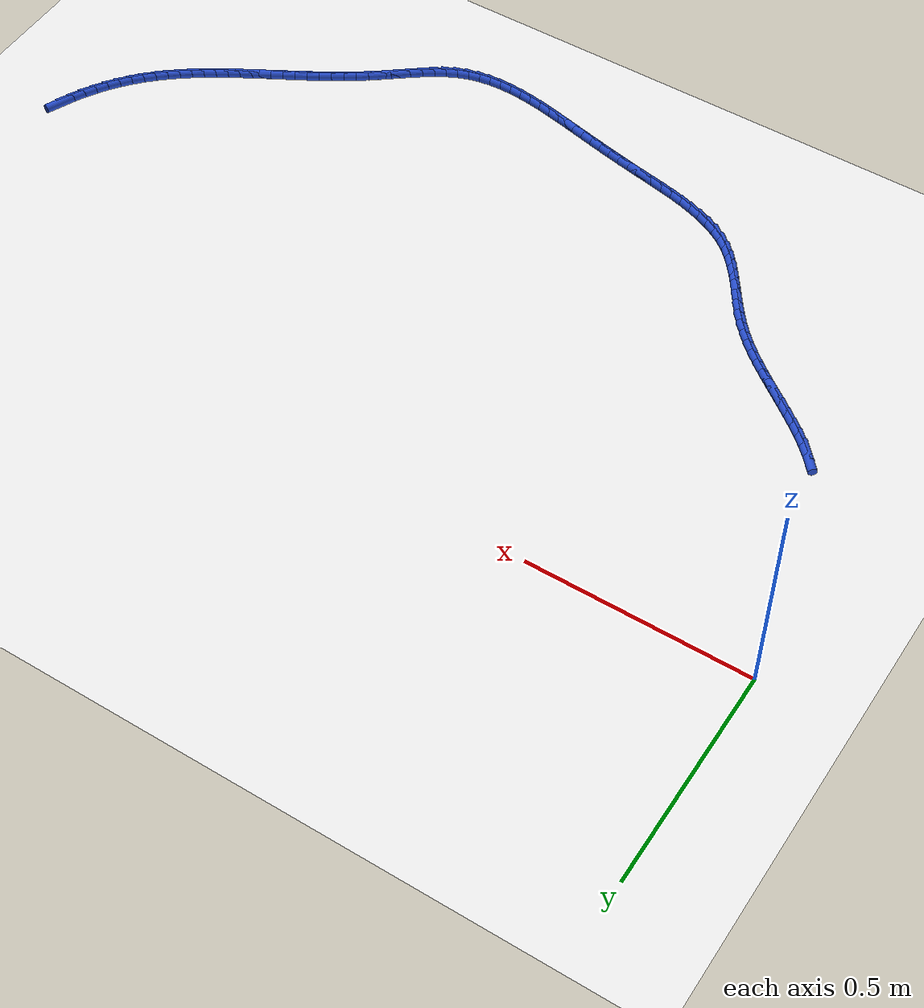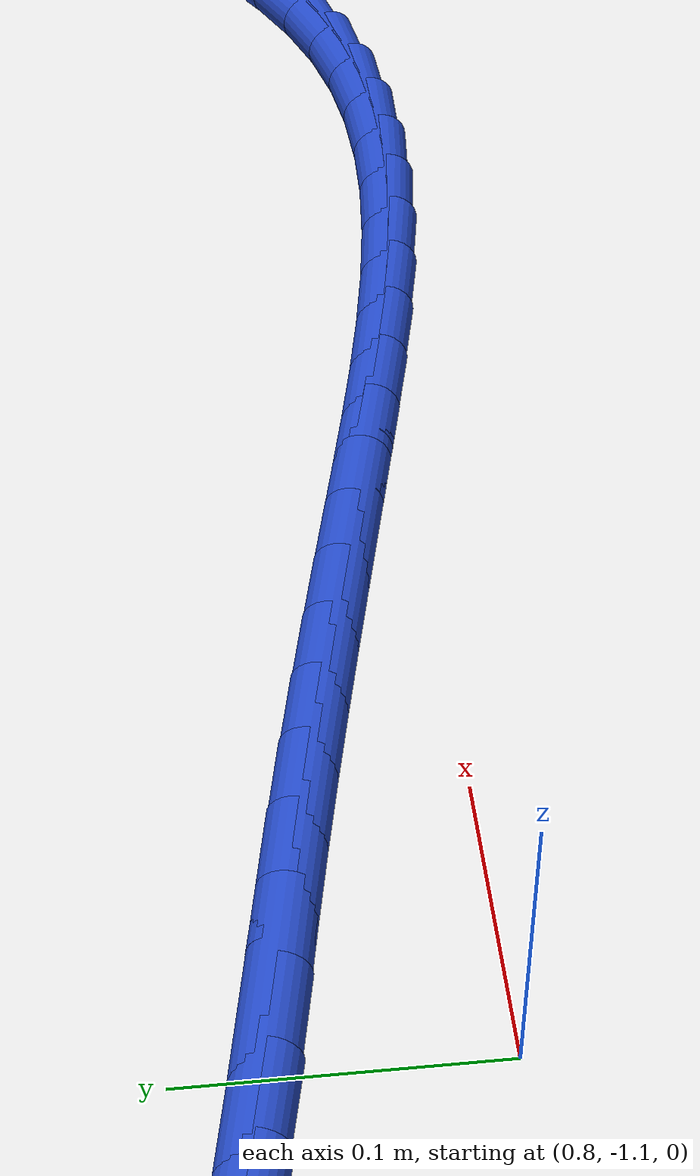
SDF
<sdf version="1.6">
 <world name="default">
  <model name="ground_plane">
   <static>1</static>
   <link name="link">
    <collision name="collision">
     <geometry><plane><normal>0 0 1</normal><size>100 100</size></plane></geometry>
     <surface><friction><ode><mu>100</mu><mu2>50</mu2></ode></friction></surface>
    </collision>
    <visual name="visual">
     <cast_shadows>0</cast_shadows>
     <geometry><plane><normal>0 0 1</normal><size>100 100</size></plane></geometry>
     <material>
      <script><uri>file://media/materials/scripts/gazebo.material</uri><name>Gazebo/WhiteGlow</name></script>
     </material>
    </visual>
   </link>
  </model>
  <model name="line">
   <link name="link_147">
    <pose>2.0394534402244555 -0.5200774827624904 0.01 0 1.57 1.1607014938859093</pose>
    <collision name="collision">
     <geometry><cylinder><radius>0.01</radius><length>0.08</length></cylinder></geometry>
    </collision>
    <visual name="visual">
     <material>
      <script><name>Gazebo/Blue</name><uri>file://media/materials/scripts/gazebo.material</uri></script>
     </material>
     <geometry><cylinder><radius>0.01</radius><length>0.08</length></cylinder></geometry>
    </visual>
   </link>
   <link name="link_148">
    <pose>2.028151447558651 -0.546074377019081 0.01 0 1.57 1.102964004471586</pose>
    <collision name="collision">
     <geometry><cylinder><radius>0.01</radius><length>0.08</length></cylinder></geometry>
    </collision>
    <visual name="visual">
     <material>
      <script><name>Gazebo/Blue</name><uri>file://media/materials/scripts/gazebo.material</uri></script>
     </material>
     <geometry><cylinder><radius>0.01</radius><length>0.08</length></cylinder></geometry>
    </visual>
   </link>
   <link name="link_149">
    <pose>2.0153294047176042 -0.571452405030783 0.01 0 1.57 1.0470421903104383</pose>
    <collision name="collision">
     <geometry><cylinder><radius>0.01</radius><length>0.08</length></cylinder></geometry>
    </collision>
    <visual name="visual">
     <material>
      <script><name>Gazebo/Blue</name><uri>file://media/materials/scripts/gazebo.material</uri></script>
     </material>
     <geometry><cylinder><radius>0.01</radius><length>0.08</length></cylinder></geometry>
    </visual>
   </link>
   <link name="link_150">
    <pose>2.0010843187176457 -0.5961167676055996 0.01 0 1.57 0.9925142822831742</pose>
    <collision name="collision">
     <geometry><cylinder><radius>0.01</radius><length>0.08</length></cylinder></geometry>
    </collision>
    <visual name="visual">
     <material>
      <script><name>Gazebo/Blue</name><uri>file://media/materials/scripts/gazebo.material</uri></script>
     </material>
     <geometry><cylinder><radius>0.01</radius><length>0.08</length></cylinder></geometry>
    </visual>
   </link>
   <link name="link_151">
    <pose>1.9855131965751047 -0.6199726655515341 0.01 0 1.57 0.9389484824659057</pose>
    <collision name="collision">
     <geometry><cylinder><radius>0.01</radius><length>0.08</length></cylinder></geometry>
    </collision>
    <visual name="visual">
     <material>
      <script><name>Gazebo/Blue</name><uri>file://media/materials/scripts/gazebo.material</uri></script>
     </material>
     <geometry><cylinder><radius>0.01</radius><length>0.08</length></cylinder></geometry>
    </visual>
   </link>
   <link name="link_152">
    <pose>1.9687130453063098 -0.6429252996765897 0.01 0 1.57 0.8859038505547642</pose>
    <collision name="collision">
     <geometry><cylinder><radius>0.01</radius><length>0.08</length></cylinder></geometry>
    </collision>
    <visual name="visual">
     <material>
      <script><name>Gazebo/Blue</name><uri>file://media/materials/scripts/gazebo.material</uri></script>
     </material>
     <geometry><cylinder><radius>0.01</radius><length>0.08</length></cylinder></geometry>
    </visual>
   </link>
   <link name="link_153">
    <pose>1.9507808719275892 -0.6648798707887694 0.01 0 1.57 0.8329288174640016</pose>
    <collision name="collision">
     <geometry><cylinder><radius>0.01</radius><length>0.08</length></cylinder></geometry>
    </collision>
    <visual name="visual">
     <material>
      <script><name>Gazebo/Blue</name><uri>file://media/materials/scripts/gazebo.material</uri></script>
     </material>
     <geometry><cylinder><radius>0.01</radius><length>0.08</length></cylinder></geometry>
    </visual>
   </link>
   <link name="link_154">
    <pose>1.931813683455275 -0.6857415796960771 0.01 0 1.57 0.7798950643243298</pose>
    <collision name="collision">
     <geometry><cylinder><radius>0.01</radius><length>0.08</length></cylinder></geometry>
    </collision>
    <visual name="visual">
     <material>
      <script><name>Gazebo/Blue</name><uri>file://media/materials/scripts/gazebo.material</uri></script>
     </material>
     <geometry><cylinder><radius>0.01</radius><length>0.08</length></cylinder></geometry>
    </visual>
   </link>
   <link name="link_155">
    <pose>1.9119086550240318 -0.7054287262663105 0.01 0 1.57 0.7298285627739514</pose>
    <collision name="collision">
     <geometry><cylinder><radius>0.01</radius><length>0.08</length></cylinder></geometry>
    </collision>
    <visual name="visual">
     <material>
      <script><name>Gazebo/Blue</name><uri>file://media/materials/scripts/gazebo.material</uri></script>
     </material>
     <geometry><cylinder><radius>0.01</radius><length>0.08</length></cylinder></geometry>
    </visual>
   </link>
   <link name="link_156">
    <pose>1.891164590951865 -0.7239865493457768 0.01 0 1.57 0.6848283657158385</pose>
    <collision name="collision">
     <geometry><cylinder><radius>0.01</radius><length>0.08</length></cylinder></geometry>
    </collision>
    <visual name="visual">
     <material>
      <script><name>Gazebo/Blue</name><uri>file://media/materials/scripts/gazebo.material</uri></script>
     </material>
     <geometry><cylinder><radius>0.01</radius><length>0.08</length></cylinder></geometry>
    </visual>
   </link>
   <link name="link_157">
    <pose>1.8696812103575895 -0.7415315651364027 0.01 0 1.57 0.6451563877351554</pose>
    <collision name="collision">
     <geometry><cylinder><radius>0.01</radius><length>0.08</length></cylinder></geometry>
    </collision>
    <visual name="visual">
     <material>
      <script><name>Gazebo/Blue</name><uri>file://media/materials/scripts/gazebo.material</uri></script>
     </material>
     <geometry><cylinder><radius>0.01</radius><length>0.08</length></cylinder></geometry>
    </visual>
   </link>
   <link name="link_158">
    <pose>1.847558242507055 -0.7581810804535143 0.01 0 1.57 0.6109434050752018</pose>
    <collision name="collision">
     <geometry><cylinder><radius>0.01</radius><length>0.08</length></cylinder></geometry>
    </collision>
    <visual name="visual">
     <material>
      <script><name>Gazebo/Blue</name><uri>file://media/materials/scripts/gazebo.material</uri></script>
     </material>
     <geometry><cylinder><radius>0.01</radius><length>0.08</length></cylinder></geometry>
    </visual>
   </link>
   <link name="link_159">
    <pose>1.8248954166661098 -0.7740524021124374 0.01 0 1.57 0.582241048737976</pose>
    <collision name="collision">
     <geometry><cylinder><radius>0.01</radius><length>0.08</length></cylinder></geometry>
    </collision>
    <visual name="visual">
     <material>
      <script><name>Gazebo/Blue</name><uri>file://media/materials/scripts/gazebo.material</uri></script>
     </material>
     <geometry><cylinder><radius>0.01</radius><length>0.08</length></cylinder></geometry>
    </visual>
   </link>
   <link name="link_160">
    <pose>1.8017924621006032 -0.7892628369284977 0.01 0 1.57 0.5590518900078861</pose>
    <collision name="collision">
     <geometry><cylinder><radius>0.01</radius><length>0.08</length></cylinder></geometry>
    </collision>
    <visual name="visual">
     <material>
      <script><name>Gazebo/Blue</name><uri>file://media/materials/scripts/gazebo.material</uri></script>
     </material>
     <geometry><cylinder><radius>0.01</radius><length>0.08</length></cylinder></geometry>
    </visual>
   </link>
   <link name="link_161">
    <pose>1.778349108076385 -0.8039296917170216 0.01 0 1.57 0.5413555399862903</pose>
    <collision name="collision">
     <geometry><cylinder><radius>0.01</radius><length>0.08</length></cylinder></geometry>
    </collision>
    <visual name="visual">
     <material>
      <script><name>Gazebo/Blue</name><uri>file://media/materials/scripts/gazebo.material</uri></script>
     </material>
     <geometry><cylinder><radius>0.01</radius><length>0.08</length></cylinder></geometry>
    </visual>
   </link>
   <link name="link_162">
    <pose>1.754665083859303 -0.8181702732933342 0.01 0 1.57 0.5291297534630568</pose>
    <collision name="collision">
     <geometry><cylinder><radius>0.01</radius><length>0.08</length></cylinder></geometry>
    </collision>
    <visual name="visual">
     <material>
      <script><name>Gazebo/Blue</name><uri>file://media/materials/scripts/gazebo.material</uri></script>
     </material>
     <geometry><cylinder><radius>0.01</radius><length>0.08</length></cylinder></geometry>
    </visual>
   </link>
   <link name="link_163">
    <pose>1.7308401187152076 -0.8321018884727626 0.01 0 1.57 0.5220765039864893</pose>
    <collision name="collision">
     <geometry><cylinder><radius>0.01</radius><length>0.08</length></cylinder></geometry>
    </collision>
    <visual name="visual">
     <material>
      <script><name>Gazebo/Blue</name><uri>file://media/materials/scripts/gazebo.material</uri></script>
     </material>
     <geometry><cylinder><radius>0.01</radius><length>0.08</length></cylinder></geometry>
    </visual>
   </link>
   <link name="link_164">
    <pose>1.7069632140130602 -0.8458388055028 0.01 0 1.57 0.519037538598423</pose>
    <collision name="collision">
     <geometry><cylinder><radius>0.01</radius><length>0.08</length></cylinder></geometry>
    </collision>
    <visual name="visual">
     <material>
      <script><name>Gazebo/Blue</name><uri>file://media/materials/scripts/gazebo.material</uri></script>
     </material>
     <geometry><cylinder><radius>0.01</radius><length>0.08</length></cylinder></geometry>
    </visual>
   </link>
   <link name="link_165">
    <pose>1.6830798929299817 -0.8594829778747042 0.01 0 1.57 0.5197369578744229</pose>
    <collision name="collision">
     <geometry><cylinder><radius>0.01</radius><length>0.08</length></cylinder></geometry>
    </collision>
    <visual name="visual">
     <material>
      <script><name>Gazebo/Blue</name><uri>file://media/materials/scripts/gazebo.material</uri></script>
     </material>
     <geometry><cylinder><radius>0.01</radius><length>0.08</length></cylinder></geometry>
    </visual>
   </link>
   <link name="link_166">
    <pose>1.6592246655787115 -0.8731332397411036 0.01 0 1.57 0.524181992881121</pose>
    <collision name="collision">
     <geometry><cylinder><radius>0.01</radius><length>0.08</length></cylinder></geometry>
    </collision>
    <visual name="visual">
     <material>
      <script><name>Gazebo/Blue</name><uri>file://media/materials/scripts/gazebo.material</uri></script>
     </material>
     <geometry><cylinder><radius>0.01</radius><length>0.08</length></cylinder></geometry>
    </visual>
   </link>
   <link name="link_167">
    <pose>1.6354320420710828 -0.8868884252543711 0.01 0 1.57 0.5323636918302034</pose>
    <collision name="collision">
     <geometry><cylinder><radius>0.01</radius><length>0.08</length></cylinder></geometry>
    </collision>
    <visual name="visual">
     <material>
      <script><name>Gazebo/Blue</name><uri>file://media/materials/scripts/gazebo.material</uri></script>
     </material>
     <geometry><cylinder><radius>0.01</radius><length>0.08</length></cylinder></geometry>
    </visual>
   </link>
   <link name="link_168">
    <pose>1.6117365325189263 -0.9008473685668779 0.01 0 1.57 0.5442551252715483</pose>
    <collision name="collision">
     <geometry><cylinder><radius>0.01</radius><length>0.08</length></cylinder></geometry>
    </collision>
    <visual name="visual">
     <material>
      <script><name>Gazebo/Blue</name><uri>file://media/materials/scripts/gazebo.material</uri></script>
     </material>
     <geometry><cylinder><radius>0.01</radius><length>0.08</length></cylinder></geometry>
    </visual>
   </link>
   <link name="link_169">
    <pose>1.588172647034073 -0.9151089038309959 0.01 0 1.57 0.559808290816162</pose>
    <collision name="collision">
     <geometry><cylinder><radius>0.01</radius><length>0.08</length></cylinder></geometry>
    </collision>
    <visual name="visual">
     <material>
      <script><name>Gazebo/Blue</name><uri>file://media/materials/scripts/gazebo.material</uri></script>
     </material>
     <geometry><cylinder><radius>0.01</radius><length>0.08</length></cylinder></geometry>
    </visual>
   </link>
   <link name="link_170">
    <pose>1.5647748957283558 -0.9297718651990975 0.01 0 1.57 0.5789499145410457</pose>
    <collision name="collision">
     <geometry><cylinder><radius>0.01</radius><length>0.08</length></cylinder></geometry>
    </collision>
    <visual name="visual">
     <material>
      <script><name>Gazebo/Blue</name><uri>file://media/materials/scripts/gazebo.material</uri></script>
     </material>
     <geometry><cylinder><radius>0.01</radius><length>0.08</length></cylinder></geometry>
    </visual>
   </link>
   <link name="link_171">
    <pose>1.541577788713605 -0.9449350868235543 0.01 0 1.57 0.6015764757833516</pose>
    <collision name="collision">
     <geometry><cylinder><radius>0.01</radius><length>0.08</length></cylinder></geometry>
    </collision>
    <visual name="visual">
     <material>
      <script><name>Gazebo/Blue</name><uri>file://media/materials/scripts/gazebo.material</uri></script>
     </material>
     <geometry><cylinder><radius>0.01</radius><length>0.08</length></cylinder></geometry>
    </visual>
   </link>
   <link name="link_172">
    <pose>1.5186158361016528 -0.9606974028567381 0.01 0 1.57 0.6275489284822567</pose>
    <collision name="collision">
     <geometry><cylinder><radius>0.01</radius><length>0.08</length></cylinder></geometry>
    </collision>
    <visual name="visual">
     <material>
      <script><name>Gazebo/Blue</name><uri>file://media/materials/scripts/gazebo.material</uri></script>
     </material>
     <geometry><cylinder><radius>0.01</radius><length>0.08</length></cylinder></geometry>
    </visual>
   </link>
   <link name="link_173">
    <pose>1.4959235480043307 -0.9771576474510211 0.01 0 1.57 0.6554982507071997</pose>
    <collision name="collision">
     <geometry><cylinder><radius>0.01</radius><length>0.08</length></cylinder></geometry>
    </collision>
    <visual name="visual">
     <material>
      <script><name>Gazebo/Blue</name><uri>file://media/materials/scripts/gazebo.material</uri></script>
     </material>
     <geometry><cylinder><radius>0.01</radius><length>0.08</length></cylinder></geometry>
    </visual>
   </link>
   <link name="link_174">
    <pose>1.4735238959219301 -0.9943811129166319 0.01 0 1.57 0.6723886418195917</pose>
    <collision name="collision">
     <geometry><cylinder><radius>0.01</radius><length>0.08</length></cylinder></geometry>
    </collision>
    <visual name="visual">
     <material>
      <script><name>Gazebo/Blue</name><uri>file://media/materials/scripts/gazebo.material</uri></script>
     </material>
     <geometry><cylinder><radius>0.01</radius><length>0.08</length></cylinder></geometry>
    </visual>
   </link>
   <link name="link_175">
    <pose>1.4513129895394947 -1.0120643141796015 0.01 0 1.57 0.6705403723813222</pose>
    <collision name="collision">
     <geometry><cylinder><radius>0.01</radius><length>0.08</length></cylinder></geometry>
    </collision>
    <visual name="visual">
     <material>
      <script><name>Gazebo/Blue</name><uri>file://media/materials/scripts/gazebo.material</uri></script>
     </material>
     <geometry><cylinder><radius>0.01</radius><length>0.08</length></cylinder></geometry>
    </visual>
   </link>
   <link name="link_176">
    <pose>1.429108419055501 -1.0296755161538667 0.01 0 1.57 0.6496976289407056</pose>
    <collision name="collision">
     <geometry><cylinder><radius>0.01</radius><length>0.08</length></cylinder></geometry>
    </collision>
    <visual name="visual">
     <material>
      <script><name>Gazebo/Blue</name><uri>file://media/materials/scripts/gazebo.material</uri></script>
     </material>
     <geometry><cylinder><radius>0.01</radius><length>0.08</length></cylinder></geometry>
    </visual>
   </link>
   <link name="link_177">
    <pose>1.4067266076742866 -1.046679591392594 0.01 0 1.57 0.6090117469464895</pose>
    <collision name="collision">
     <geometry><cylinder><radius>0.01</radius><length>0.08</length></cylinder></geometry>
    </collision>
    <visual name="visual">
     <material>
      <script><name>Gazebo/Blue</name><uri>file://media/materials/scripts/gazebo.material</uri></script>
     </material>
     <geometry><cylinder><radius>0.01</radius><length>0.08</length></cylinder></geometry>
    </visual>
   </link>
   <link name="link_178">
    <pose>1.3839839786001917 -1.0625414124489478 0.01 0 1.57 0.5470936378254092</pose>
    <collision name="collision">
     <geometry><cylinder><radius>0.01</radius><length>0.08</length></cylinder></geometry>
    </collision>
    <visual name="visual">
     <material>
      <script><name>Gazebo/Blue</name><uri>file://media/materials/scripts/gazebo.material</uri></script>
     </material>
     <geometry><cylinder><radius>0.01</radius><length>0.08</length></cylinder></geometry>
    </visual>
   </link>
   <link name="link_179">
    <pose>1.3606969550375538 -1.0767258518760934 0.01 0 1.57 0.46246207841684284</pose>
    <collision name="collision">
     <geometry><cylinder><radius>0.01</radius><length>0.08</length></cylinder></geometry>
    </collision>
    <visual name="visual">
     <material>
      <script><name>Gazebo/Blue</name><uri>file://media/materials/scripts/gazebo.material</uri></script>
     </material>
     <geometry><cylinder><radius>0.01</radius><length>0.08</length></cylinder></geometry>
    </visual>
   </link>
   <link name="link_180">
    <pose>1.3366819601907127 -1.0886977822271962 0.01 0 1.57 0.35498244303026244</pose>
    <collision name="collision">
     <geometry><cylinder><radius>0.01</radius><length>0.08</length></cylinder></geometry>
    </collision>
    <visual name="visual">
     <material>
      <script><name>Gazebo/Blue</name><uri>file://media/materials/scripts/gazebo.material</uri></script>
     </material>
     <geometry><cylinder><radius>0.01</radius><length>0.08</length></cylinder></geometry>
    </visual>
   </link>
   <link name="link_181">
    <pose>1.311760809189643 -1.0979356831296947 0.01 0 1.57 0.24119229416348173</pose>
    <collision name="collision">
     <geometry><cylinder><radius>0.01</radius><length>0.08</length></cylinder></geometry>
    </collision>
    <visual name="visual">
     <material>
      <script><name>Gazebo/Blue</name><uri>file://media/materials/scripts/gazebo.material</uri></script>
     </material>
     <geometry><cylinder><radius>0.01</radius><length>0.08</length></cylinder></geometry>
    </visual>
   </link>
   <link name="link_182">
    <pose>1.2859049786347023 -1.1042957201957333 0.01 0 1.57 0.13999442233161233</pose>
    <collision name="collision">
     <geometry><cylinder><radius>0.01</radius><length>0.08</length></cylinder></geometry>
    </collision>
    <visual name="visual">
     <material>
      <script><name>Gazebo/Blue</name><uri>file://media/materials/scripts/gazebo.material</uri></script>
     </material>
     <geometry><cylinder><radius>0.01</radius><length>0.08</length></cylinder></geometry>
    </visual>
   </link>
   <link name="link_183">
    <pose>1.259251415050391 -1.1080516392675508 0.01 0 1.57 0.052948682502865815</pose>
    <collision name="collision">
     <geometry><cylinder><radius>0.01</radius><length>0.08</length></cylinder></geometry>
    </collision>
    <visual name="visual">
     <material>
      <script><name>Gazebo/Blue</name><uri>file://media/materials/scripts/gazebo.material</uri></script>
     </material>
     <geometry><cylinder><radius>0.01</radius><length>0.08</length></cylinder></geometry>
    </visual>
   </link>
   <link name="link_184">
    <pose>1.2319456285743622 -1.1094987973385952 0.01 0 1.57 -0.020356592686012392</pose>
    <collision name="collision">
     <geometry><cylinder><radius>0.01</radius><length>0.08</length></cylinder></geometry>
    </collision>
    <visual name="visual">
     <material>
      <script><name>Gazebo/Blue</name><uri>file://media/materials/scripts/gazebo.material</uri></script>
     </material>
     <geometry><cylinder><radius>0.01</radius><length>0.08</length></cylinder></geometry>
    </visual>
   </link>
   <link name="link_185">
    <pose>1.2041331293442687 -1.1089325514023127 0.01 0 1.57 -0.080901939213322</pose>
    <collision name="collision">
     <geometry><cylinder><radius>0.01</radius><length>0.08</length></cylinder></geometry>
    </collision>
    <visual name="visual">
     <material>
      <script><name>Gazebo/Blue</name><uri>file://media/materials/scripts/gazebo.material</uri></script>
     </material>
     <geometry><cylinder><radius>0.01</radius><length>0.08</length></cylinder></geometry>
    </visual>
   </link>
   <link name="link_186">
    <pose>1.1759594274977645 -1.1066482584521506 0.01 0 1.57 -0.12984171581247755</pose>
    <collision name="collision">
     <geometry><cylinder><radius>0.01</radius><length>0.08</length></cylinder></geometry>
    </collision>
    <visual name="visual">
     <material>
      <script><name>Gazebo/Blue</name><uri>file://media/materials/scripts/gazebo.material</uri></script>
     </material>
     <geometry><cylinder><radius>0.01</radius><length>0.08</length></cylinder></geometry>
    </visual>
   </link>
   <link name="link_187">
    <pose>1.147570033172503 -1.1029412754815568 0.01 0 1.57 -0.16825997094299877</pose>
    <collision name="collision">
     <geometry><cylinder><radius>0.01</radius><length>0.08</length></cylinder></geometry>
    </collision>
    <visual name="visual">
     <material>
      <script><name>Gazebo/Blue</name><uri>file://media/materials/scripts/gazebo.material</uri></script>
     </material>
     <geometry><cylinder><radius>0.01</radius><length>0.08</length></cylinder></geometry>
    </visual>
   </link>
   <link name="link_188">
    <pose>1.119110456506137 -1.0981069594839776 0.01 0 1.57 -0.19703788254680052</pose>
    <collision name="collision">
     <geometry><cylinder><radius>0.01</radius><length>0.08</length></cylinder></geometry>
    </collision>
    <visual name="visual">
     <material>
      <script><name>Gazebo/Blue</name><uri>file://media/materials/scripts/gazebo.material</uri></script>
     </material>
     <geometry><cylinder><radius>0.01</radius><length>0.08</length></cylinder></geometry>
    </visual>
   </link>
   <link name="link_189">
    <pose>1.09072620763632 -1.0924406674528606 0.01 0 1.57 -0.21678603557533555</pose>
    <collision name="collision">
     <geometry><cylinder><radius>0.01</radius><length>0.08</length></cylinder></geometry>
    </collision>
    <visual name="visual">
     <material>
      <script><name>Gazebo/Blue</name><uri>file://media/materials/scripts/gazebo.material</uri></script>
     </material>
     <geometry><cylinder><radius>0.01</radius><length>0.08</length></cylinder></geometry>
    </visual>
   </link>
   <link name="link_190">
    <pose>1.0625627967007052 -1.086237756381652 0.01 0 1.57 -0.227805066888016</pose>
    <collision name="collision">
     <geometry><cylinder><radius>0.01</radius><length>0.08</length></cylinder></geometry>
    </collision>
    <visual name="visual">
     <material>
      <script><name>Gazebo/Blue</name><uri>file://media/materials/scripts/gazebo.material</uri></script>
     </material>
     <geometry><cylinder><radius>0.01</radius><length>0.08</length></cylinder></geometry>
    </visual>
   </link>
   <link name="link_191">
    <pose>1.0347657338369465 -1.0797935832638004 0.01 0 1.57 -0.2310871649107776</pose>
    <collision name="collision">
     <geometry><cylinder><radius>0.01</radius><length>0.08</length></cylinder></geometry>
    </collision>
    <visual name="visual">
     <material>
      <script><name>Gazebo/Blue</name><uri>file://media/materials/scripts/gazebo.material</uri></script>
     </material>
     <geometry><cylinder><radius>0.01</radius><length>0.08</length></cylinder></geometry>
    </visual>
   </link>
   <link name="link_192">
    <pose>1.007438056918966 -1.073363642644059 0.01 0 1.57 -0.2311968925453582</pose>
    <collision name="collision">
     <geometry><cylinder><radius>0.01</radius><length>0.08</length></cylinder></geometry>
    </collision>
    <visual name="visual">
     <material>
      <script><name>Gazebo/Blue</name><uri>file://media/materials/scripts/gazebo.material</uri></script>
     </material>
     <geometry><cylinder><radius>0.01</radius><length>0.08</length></cylinder></geometry>
    </visual>
   </link>
   <link name="link_193">
    <pose>0.9804863445492367 -1.0670190417296463 0.01 0 1.57 -0.22942280729182085</pose>
    <collision name="collision">
     <geometry><cylinder><radius>0.01</radius><length>0.08</length></cylinder></geometry>
    </collision>
    <visual name="visual">
     <material>
      <script><name>Gazebo/Blue</name><uri>file://media/materials/scripts/gazebo.material</uri></script>
     </material>
     <geometry><cylinder><radius>0.01</radius><length>0.08</length></cylinder></geometry>
    </visual>
   </link>
   <link name="link_194">
    <pose>0.9537604108312575 -1.060777611266176 0.01 0 1.57 -0.2257424493339475</pose>
    <collision name="collision">
     <geometry><cylinder><radius>0.01</radius><length>0.08</length></cylinder></geometry>
    </collision>
    <visual name="visual">
     <material>
      <script><name>Gazebo/Blue</name><uri>file://media/materials/scripts/gazebo.material</uri></script>
     </material>
     <geometry><cylinder><radius>0.01</radius><length>0.08</length></cylinder></geometry>
    </visual>
   </link>
   <link name="link_195">
    <pose>0.9271100642907885 -1.0546571767642607 0.01 0 1.57 -0.22019224846852214</pose>
    <collision name="collision">
     <geometry><cylinder><radius>0.01</radius><length>0.08</length></cylinder></geometry>
    </collision>
    <visual name="visual">
     <material>
      <script><name>Gazebo/Blue</name><uri>file://media/materials/scripts/gazebo.material</uri></script>
     </material>
     <geometry><cylinder><radius>0.01</radius><length>0.08</length></cylinder></geometry>
    </visual>
   </link>
   <link name="link_196">
    <pose>0.9003851134535875 -1.0486755637345113 0.01 0 1.57 -0.21286723119529138</pose>
    <collision name="collision">
     <geometry><cylinder><radius>0.01</radius><length>0.08</length></cylinder></geometry>
    </collision>
    <visual name="visual">
     <material>
      <script><name>Gazebo/Blue</name><uri>file://media/materials/scripts/gazebo.material</uri></script>
     </material>
     <geometry><cylinder><radius>0.01</radius><length>0.08</length></cylinder></geometry>
    </visual>
   </link>
   <link name="link_197">
    <pose>0.873435366845414 -1.04285059768754 0.01 0 1.57 -0.20391622572733256</pose>
    <collision name="collision">
     <geometry><cylinder><radius>0.01</radius><length>0.08</length></cylinder></geometry>
    </collision>
    <visual name="visual">
     <material>
      <script><name>Gazebo/Blue</name><uri>file://media/materials/scripts/gazebo.material</uri></script>
     </material>
     <geometry><cylinder><radius>0.01</radius><length>0.08</length></cylinder></geometry>
    </visual>
   </link>
   <link name="link_198">
    <pose>0.8461106333311484 -1.0372001039010736 0.01 0 1.57 -0.19555950271715009</pose>
    <collision name="collision">
     <geometry><cylinder><radius>0.01</radius><length>0.08</length></cylinder></geometry>
    </collision>
    <visual name="visual">
     <material>
      <script><name>Gazebo/Blue</name><uri>file://media/materials/scripts/gazebo.material</uri></script>
     </material>
     <geometry><cylinder><radius>0.01</radius><length>0.08</length></cylinder></geometry>
    </visual>
   </link>
   <link name="link_199">
    <pose>0.8183269795819313 -1.0316964066069982 0.01 0 1.57 -0.19541677949048863</pose>
    <collision name="collision">
     <geometry><cylinder><radius>0.01</radius><length>0.08</length></cylinder></geometry>
    </collision>
    <visual name="visual">
     <material>
      <script><name>Gazebo/Blue</name><uri>file://media/materials/scripts/gazebo.material</uri></script>
     </material>
     <geometry><cylinder><radius>0.01</radius><length>0.08</length></cylinder></geometry>
    </visual>
   </link>
   <link name="link_200">
    <pose>0.7902519262725237 -1.0261391497027368 0.01 0 1.57 -0.2050472013083898</pose>
    <collision name="collision">
     <geometry><cylinder><radius>0.01</radius><length>0.08</length></cylinder></geometry>
    </collision>
    <visual name="visual">
     <material>
      <script><name>Gazebo/Blue</name><uri>file://media/materials/scripts/gazebo.material</uri></script>
     </material>
     <geometry><cylinder><radius>0.01</radius><length>0.08</length></cylinder></geometry>
    </visual>
   </link>
   <link name="link_201">
    <pose>0.7621126354598751 -1.020287019719054 0.01 0 1.57 -0.22449777829286993</pose>
    <collision name="collision">
     <geometry><cylinder><radius>0.01</radius><length>0.08</length></cylinder></geometry>
    </collision>
    <visual name="visual">
     <material>
      <script><name>Gazebo/Blue</name><uri>file://media/materials/scripts/gazebo.material</uri></script>
     </material>
     <geometry><cylinder><radius>0.01</radius><length>0.08</length></cylinder></geometry>
    </visual>
   </link>
   <link name="link_202">
    <pose>0.734136269200935 -1.0138987031867126 0.01 0 1.57 -0.2541433965901949</pose>
    <collision name="collision">
     <geometry><cylinder><radius>0.01</radius><length>0.08</length></cylinder></geometry>
    </collision>
    <visual name="visual">
     <material>
      <script><name>Gazebo/Blue</name><uri>file://media/materials/scripts/gazebo.material</uri></script>
     </material>
     <geometry><cylinder><radius>0.01</radius><length>0.08</length></cylinder></geometry>
    </visual>
   </link>
   <link name="link_203">
    <pose>0.7065499895526535 -1.0067328866364778 0.01 0 1.57 -0.2946487154816712</pose>
    <collision name="collision">
     <geometry><cylinder><radius>0.01</radius><length>0.08</length></cylinder></geometry>
    </collision>
    <visual name="visual">
     <material>
      <script><name>Gazebo/Blue</name><uri>file://media/materials/scripts/gazebo.material</uri></script>
     </material>
     <geometry><cylinder><radius>0.01</radius><length>0.08</length></cylinder></geometry>
    </visual>
   </link>
   <link name="link_204">
    <pose>0.6795809585719799 -0.9985482565991125 0.01 0 1.57 -0.34690677578327367</pose>
    <collision name="collision">
     <geometry><cylinder><radius>0.01</radius><length>0.08</length></cylinder></geometry>
    </collision>
    <visual name="visual">
     <material>
      <script><name>Gazebo/Blue</name><uri>file://media/materials/scripts/gazebo.material</uri></script>
     </material>
     <geometry><cylinder><radius>0.01</radius><length>0.08</length></cylinder></geometry>
    </visual>
   </link>
   <link name="link_205">
    <pose>0.653456338315864 -0.989103499605381 0.01 0 1.57 -0.41192418580479384</pose>
    <collision name="collision">
     <geometry><cylinder><radius>0.01</radius><length>0.08</length></cylinder></geometry>
    </collision>
    <visual name="visual">
     <material>
      <script><name>Gazebo/Blue</name><uri>file://media/materials/scripts/gazebo.material</uri></script>
     </material>
     <geometry><cylinder><radius>0.01</radius><length>0.08</length></cylinder></geometry>
    </visual>
   </link>
   <link name="link_206">
    <pose>0.6284032908412552 -0.9781573021860471 0.01 0 1.57 -0.49061209112960336</pose>
    <collision name="collision">
     <geometry><cylinder><radius>0.01</radius><length>0.08</length></cylinder></geometry>
    </collision>
    <visual name="visual">
     <material>
      <script><name>Gazebo/Blue</name><uri>file://media/materials/scripts/gazebo.material</uri></script>
     </material>
     <geometry><cylinder><radius>0.01</radius><length>0.08</length></cylinder></geometry>
    </visual>
   </link>
   <link name="link_207">
    <pose>0.6046489782051035 -0.9654683508718751 0.01 0 1.57 -0.5834439598080575</pose>
    <collision name="collision">
     <geometry><cylinder><radius>0.01</radius><length>0.08</length></cylinder></geometry>
    </collision>
    <visual name="visual">
     <material>
      <script><name>Gazebo/Blue</name><uri>file://media/materials/scripts/gazebo.material</uri></script>
     </material>
     <geometry><cylinder><radius>0.01</radius><length>0.08</length></cylinder></geometry>
    </visual>
   </link>
   <link name="link_208">
    <pose>0.5824205624643586 -0.9507953321936287 0.01 0 1.57 -0.6892367860913915</pose>
    <collision name="collision">
     <geometry><cylinder><radius>0.01</radius><length>0.08</length></cylinder></geometry>
    </collision>
    <visual name="visual">
     <material>
      <script><name>Gazebo/Blue</name><uri>file://media/materials/scripts/gazebo.material</uri></script>
     </material>
     <geometry><cylinder><radius>0.01</radius><length>0.08</length></cylinder></geometry>
    </visual>
   </link>
   <link name="link_209">
    <pose>0.5619319736198143 -0.9339116324327507 0.01 0 1.57 -0.7900097394956082</pose>
    <collision name="collision">
     <geometry><cylinder><radius>0.01</radius><length>0.08</length></cylinder></geometry>
    </collision>
    <visual name="visual">
     <material>
      <script><name>Gazebo/Blue</name><uri>file://media/materials/scripts/gazebo.material</uri></script>
     </material>
     <geometry><cylinder><radius>0.01</radius><length>0.08</length></cylinder></geometry>
    </visual>
   </link>
   <link name="link_210">
    <pose>0.5431073463695367 -0.9149125771556849 0.01 0 1.57 -0.8685924137953628</pose>
    <collision name="collision">
     <geometry><cylinder><radius>0.01</radius><length>0.08</length></cylinder></geometry>
    </collision>
    <visual name="visual">
     <material>
      <script><name>Gazebo/Blue</name><uri>file://media/materials/scripts/gazebo.material</uri></script>
     </material>
     <geometry><cylinder><radius>0.01</radius><length>0.08</length></cylinder></geometry>
    </visual>
   </link>
   <link name="link_211">
    <pose>0.5255888759091741 -0.8942067040512548 0.01 0 1.57 -0.9247281069723902</pose>
    <collision name="collision">
     <geometry><cylinder><radius>0.01</radius><length>0.08</length></cylinder></geometry>
    </collision>
    <visual name="visual">
     <material>
      <script><name>Gazebo/Blue</name><uri>file://media/materials/scripts/gazebo.material</uri></script>
     </material>
     <geometry><cylinder><radius>0.01</radius><length>0.08</length></cylinder></geometry>
    </visual>
   </link>
   <link name="link_212">
    <pose>0.5090070969102863 -0.8722155047131682 0.01 0 1.57 -0.9595998214967174</pose>
    <collision name="collision">
     <geometry><cylinder><radius>0.01</radius><length>0.08</length></cylinder></geometry>
    </collision>
    <visual name="visual">
     <material>
      <script><name>Gazebo/Blue</name><uri>file://media/materials/scripts/gazebo.material</uri></script>
     </material>
     <geometry><cylinder><radius>0.01</radius><length>0.08</length></cylinder></geometry>
    </visual>
   </link>
   <link name="link_213">
    <pose>0.492992544044433 -0.8493604707351337 0.01 0 1.57 -0.9743662831888057</pose>
    <collision name="collision">
     <geometry><cylinder><radius>0.01</radius><length>0.08</length></cylinder></geometry>
    </collision>
    <visual name="visual">
     <material>
      <script><name>Gazebo/Blue</name><uri>file://media/materials/scripts/gazebo.material</uri></script>
     </material>
     <geometry><cylinder><radius>0.01</radius><length>0.08</length></cylinder></geometry>
    </visual>
   </link>
   <link name="link_214">
    <pose>0.47717575198317363 -0.8260630937108593 0.01 0 1.57 -0.9697559952803553</pose>
    <collision name="collision">
     <geometry><cylinder><radius>0.01</radius><length>0.08</length></cylinder></geometry>
    </collision>
    <visual name="visual">
     <material>
      <script><name>Gazebo/Blue</name><uri>file://media/materials/scripts/gazebo.material</uri></script>
     </material>
     <geometry><cylinder><radius>0.01</radius><length>0.08</length></cylinder></geometry>
    </visual>
   </link>
   <link name="link_215">
    <pose>0.4611872553980682 -0.8027448652340538 0.01 0 1.57 -0.9459403127278267</pose>
    <collision name="collision">
     <geometry><cylinder><radius>0.01</radius><length>0.08</length></cylinder></geometry>
    </collision>
    <visual name="visual">
     <material>
      <script><name>Gazebo/Blue</name><uri>file://media/materials/scripts/gazebo.material</uri></script>
     </material>
     <geometry><cylinder><radius>0.01</radius><length>0.08</length></cylinder></geometry>
    </visual>
   </link>
   <link name="link_216">
    <pose>0.4446575889606762 -0.779827276898425 0.01 0 1.57 -0.9026039383445822</pose>
    <collision name="collision">
     <geometry><cylinder><radius>0.01</radius><length>0.08</length></cylinder></geometry>
    </collision>
    <visual name="visual">
     <material>
      <script><name>Gazebo/Blue</name><uri>file://media/materials/scripts/gazebo.material</uri></script>
     </material>
     <geometry><cylinder><radius>0.01</radius><length>0.08</length></cylinder></geometry>
    </visual>
   </link>
   <link name="link_217">
    <pose>0.42721728734256714 -0.7577318202976705 0.01 0 1.57 -0.8440536895500179</pose>
    <collision name="collision">
     <geometry><cylinder><radius>0.01</radius><length>0.08</length></cylinder></geometry>
    </collision>
    <visual name="visual">
     <material>
      <script><name>Gazebo/Blue</name><uri>file://media/materials/scripts/gazebo.material</uri></script>
     </material>
     <geometry><cylinder><radius>0.01</radius><length>0.08</length></cylinder></geometry>
    </visual>
   </link>
   <link name="link_218">
    <pose>0.4085907173097186 -0.7367811611306867 0.01 0 1.57 -0.7895468718221906</pose>
    <collision name="collision">
     <geometry><cylinder><radius>0.01</radius><length>0.08</length></cylinder></geometry>
    </collision>
    <visual name="visual">
     <material>
      <script><name>Gazebo/Blue</name><uri>file://media/materials/scripts/gazebo.material</uri></script>
     </material>
     <geometry><cylinder><radius>0.01</radius><length>0.08</length></cylinder></geometry>
    </visual>
   </link>
   <link name="link_219">
    <pose>0.38887703762738735 -0.71690322644189 0.01 0 1.57 -0.7441865652721321</pose>
    <collision name="collision">
     <geometry><cylinder><radius>0.01</radius><length>0.08</length></cylinder></geometry>
    </collision>
    <visual name="visual">
     <material>
      <script><name>Gazebo/Blue</name><uri>file://media/materials/scripts/gazebo.material</uri></script>
     </material>
     <geometry><cylinder><radius>0.01</radius><length>0.08</length></cylinder></geometry>
    </visual>
   </link>
   <link name="link_220">
    <pose>0.3682689711576417 -0.697927399641485 0.01 0 1.57 -0.7080539043425329</pose>
    <collision name="collision">
     <geometry><cylinder><radius>0.01</radius><length>0.08</length></cylinder></geometry>
    </collision>
    <visual name="visual">
     <material>
      <script><name>Gazebo/Blue</name><uri>file://media/materials/scripts/gazebo.material</uri></script>
     </material>
     <geometry><cylinder><radius>0.01</radius><length>0.08</length></cylinder></geometry>
    </visual>
   </link>
   <link name="link_221">
    <pose>0.3469592407625493 -0.6796830641396768 0.01 0 1.57 -0.6810948350272347</pose>
    <collision name="collision">
     <geometry><cylinder><radius>0.01</radius><length>0.08</length></cylinder></geometry>
    </collision>
    <visual name="visual">
     <material>
      <script><name>Gazebo/Blue</name><uri>file://media/materials/scripts/gazebo.material</uri></script>
     </material>
     <geometry><cylinder><radius>0.01</radius><length>0.08</length></cylinder></geometry>
    </visual>
   </link>
   <link name="link_222">
    <pose>0.32514056930417823 -0.6619996033466699 0.01 0 1.57 -0.663211973646424</pose>
    <collision name="collision">
     <geometry><cylinder><radius>0.01</radius><length>0.08</length></cylinder></geometry>
    </collision>
    <visual name="visual">
     <material>
      <script><name>Gazebo/Blue</name><uri>file://media/materials/scripts/gazebo.material</uri></script>
     </material>
     <geometry><cylinder><radius>0.01</radius><length>0.08</length></cylinder></geometry>
    </visual>
   </link>
   <link name="link_223">
    <pose>0.3030056796445962 -0.6447064006726689 0.01 0 1.57 -0.6543316574112207</pose>
    <collision name="collision">
     <geometry><cylinder><radius>0.01</radius><length>0.08</length></cylinder></geometry>
    </collision>
    <visual name="visual">
     <material>
      <script><name>Gazebo/Blue</name><uri>file://media/materials/scripts/gazebo.material</uri></script>
     </material>
     <geometry><cylinder><radius>0.01</radius><length>0.08</length></cylinder></geometry>
    </visual>
   </link>
   <link name="link_224">
    <pose>0.2807472946458712 -0.6276328395278788 0.01 0 1.57 -0.6544473195342706</pose>
    <collision name="collision">
     <geometry><cylinder><radius>0.01</radius><length>0.08</length></cylinder></geometry>
    </collision>
    <visual name="visual">
     <material>
      <script><name>Gazebo/Blue</name><uri>file://media/materials/scripts/gazebo.material</uri></script>
     </material>
     <geometry><cylinder><radius>0.01</radius><length>0.08</length></cylinder></geometry>
    </visual>
   </link>
   <link name="link_225">
    <pose>0.25855813717007103 -0.610608303322504 0.01 0 1.57 -0.6636417289973449</pose>
    <collision name="collision">
     <geometry><cylinder><radius>0.01</radius><length>0.08</length></cylinder></geometry>
    </collision>
    <visual name="visual">
     <material>
      <script><name>Gazebo/Blue</name><uri>file://media/materials/scripts/gazebo.material</uri></script>
     </material>
     <geometry><cylinder><radius>0.01</radius><length>0.08</length></cylinder></geometry>
    </visual>
   </link>
   <link name="link_226">
    <pose>0.23663093007926378 -0.5934621754667494 0.01 0 1.57 -0.682089355563766</pose>
    <collision name="collision">
     <geometry><cylinder><radius>0.01</radius><length>0.08</length></cylinder></geometry>
    </collision>
    <visual name="visual">
     <material>
      <script><name>Gazebo/Blue</name><uri>file://media/materials/scripts/gazebo.material</uri></script>
     </material>
     <geometry><cylinder><radius>0.01</radius><length>0.08</length></cylinder></geometry>
    </visual>
   </link>
   <link name="link_227">
    <pose>0.2151583962355173 -0.5760238393708199 0.01 0 1.57 -0.7100375040650829</pose>
    <collision name="collision">
     <geometry><cylinder><radius>0.01</radius><length>0.08</length></cylinder></geometry>
    </collision>
    <visual name="visual">
     <material>
      <script><name>Gazebo/Blue</name><uri>file://media/materials/scripts/gazebo.material</uri></script>
     </material>
     <geometry><cylinder><radius>0.01</radius><length>0.08</length></cylinder></geometry>
    </visual>
   </link>
   <link name="link_228">
    <pose>0.19433325850089936 -0.5581226784449197 0.01 0 1.57 -0.747761980028867</pose>
    <collision name="collision">
     <geometry><cylinder><radius>0.01</radius><length>0.08</length></cylinder></geometry>
    </collision>
    <visual name="visual">
     <material>
      <script><name>Gazebo/Blue</name><uri>file://media/materials/scripts/gazebo.material</uri></script>
     </material>
     <geometry><cylinder><radius>0.01</radius><length>0.08</length></cylinder></geometry>
    </visual>
   </link>
   <link name="link_229">
    <pose>0.17434823973747798 -0.539588076099254 0.01 0 1.57 -0.7954911863973271</pose>
    <collision name="collision">
     <geometry><cylinder><radius>0.01</radius><length>0.08</length></cylinder></geometry>
    </collision>
    <visual name="visual">
     <material>
      <script><name>Gazebo/Blue</name><uri>file://media/materials/scripts/gazebo.material</uri></script>
     </material>
     <geometry><cylinder><radius>0.01</radius><length>0.08</length></cylinder></geometry>
    </visual>
   </link>
   <link name="link_230">
    <pose>0.15539606280732102 -0.5202494157440273 0.01 0 1.57 -0.8532938076982606</pose>
    <collision name="collision">
     <geometry><cylinder><radius>0.01</radius><length>0.08</length></cylinder></geometry>
    </collision>
    <visual name="visual">
     <material>
      <script><name>Gazebo/Blue</name><uri>file://media/materials/scripts/gazebo.material</uri></script>
     </material>
     <geometry><cylinder><radius>0.01</radius><length>0.08</length></cylinder></geometry>
    </visual>
   </link>
  </model>
 </world>
</sdf>
